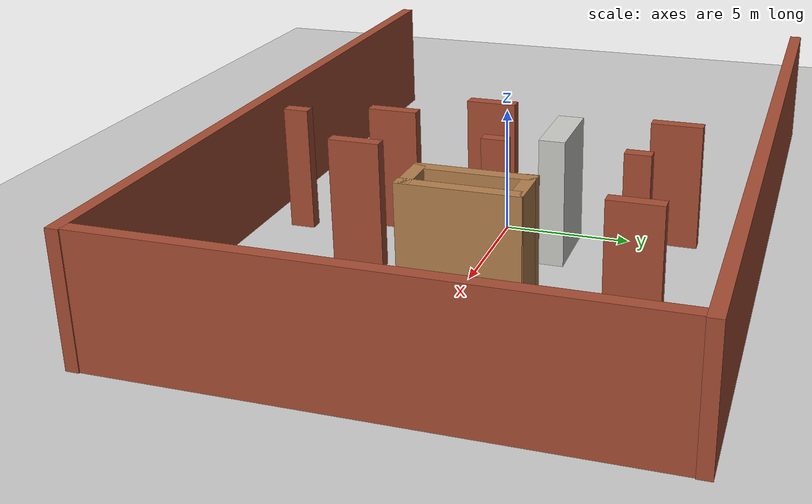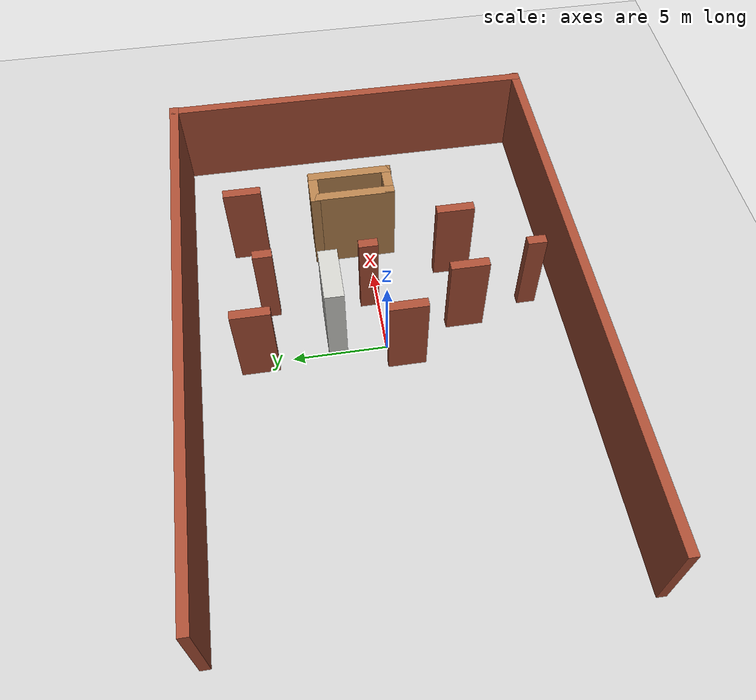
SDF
<sdf version="1.6">
 <world name="default">
  <model name="ground_plane">
   <static>1</static>
   <link name="link">
    <collision name="collision">
     <geometry><plane><normal>0 0 1</normal><size>40 40</size></plane></geometry>
     <surface><friction><ode><mu>100</mu><mu2>50</mu2></ode></friction></surface>
    </collision>
    <visual name="visual">
     <cast_shadows>0</cast_shadows>
     <geometry><plane><normal>0 0 1</normal><size>40 40</size></plane></geometry>
     <material>
      <script><uri>file://media/materials/scripts/gazebo.material</uri><name>Gazebo/Grey</name></script>
     </material>
    </visual>
   </link>
  </model>
  <model name="indoor6">
   <link name="Wall_1">
    <pose>-0.001616 10.1104 0 0 -0 0</pose>
    <inertial>
     <mass>1</mass>
     <inertia><ixx>1</ixx><ixy>0</ixy><ixz>0</ixz><iyy>1</iyy><iyz>0</iyz><izz>1</izz></inertia>
    </inertial>
    <visual name="Wall_1_Visual">
     <pose>0 0 2.5 0 -0 0</pose>
     <geometry><box><size>30 0.5 5</size></box></geometry>
     <material>
      <script><uri>file://media/materials/scripts/gazebo.material</uri><name>Gazebo/Bricks</name></script>
      <ambient>1 1 1 1</ambient>
      <shader type="pixel"><normal_map>__default__</normal_map></shader>
      <diffuse>1 1 1 1</diffuse>
      <specular>0.2 0.2 0.2 1</specular>
      <emissive>0 0 0 1</emissive>
     </material>
     <meta><layer>0</layer></meta>
    </visual>
    <collision name="Wall_1_Collision">
     <pose>0 0 2.5 0 -0 0</pose>
     <geometry><box><size>30 0.5 5</size></box></geometry>
     <surface>
      <friction>
       <ode><mu>1</mu><mu2>1</mu2><fdir1>0 0 0</fdir1><slip1>0</slip1><slip2>0</slip2></ode>
       <torsional>
        <coefficient>1</coefficient>
        <patch_radius>0</patch_radius>
        <surface_radius>0</surface_radius>
        <use_patch_radius>1</use_patch_radius>
        <ode><slip>0</slip></ode>
       </torsional>
      </friction>
      <bounce><restitution_coefficient>0</restitution_coefficient><threshold>1e+06</threshold></bounce>
      <contact>
       <collide_without_contact>0</collide_without_contact>
       <collide_without_contact_bitmask>1</collide_without_contact_bitmask>
       <collide_bitmask>1</collide_bitmask>
       <ode>
        <soft_cfm>0</soft_cfm>
        <soft_erp>0.2</soft_erp>
        <kp>1e+13</kp>
        <kd>1</kd>
        <max_vel>0.01</max_vel>
        <min_depth>0</min_depth>
       </ode>
       <bullet>
        <split_impulse>1</split_impulse>
        <split_impulse_penetration_threshold>-0.01</split_impulse_penetration_threshold>
        <soft_cfm>0</soft_cfm>
        <soft_erp>0.2</soft_erp>
        <kp>1e+13</kp>
        <kd>1</kd>
       </bullet>
      </contact>
     </surface>
    </collision>
   </link>
   <link name="Wall_19">
    <pose>6.71461 0.814272 0 0 0 -1.5708</pose>
    <visual name="Wall_19_Visual">
     <pose>0 0 2.5 0 -0 0</pose>
     <geometry><box><size>4.5 0.5 5</size></box></geometry>
     <material>
      <script><uri>file://media/materials/scripts/gazebo.material</uri><name>Gazebo/Wood</name></script>
      <ambient>1 1 1 1</ambient>
      <shader type="pixel"/>
     </material>
     <meta><layer>0</layer></meta>
    </visual>
    <collision name="Wall_19_Collision">
     <pose>0 0 2.5 0 -0 0</pose>
     <geometry><box><size>4.5 0.5 5</size></box></geometry>
     <surface>
      <friction>
       <ode><mu>1</mu><mu2>1</mu2><fdir1>0 0 0</fdir1><slip1>0</slip1><slip2>0</slip2></ode>
       <torsional>
        <coefficient>1</coefficient>
        <patch_radius>0</patch_radius>
        <surface_radius>0</surface_radius>
        <use_patch_radius>1</use_patch_radius>
        <ode><slip>0</slip></ode>
       </torsional>
      </friction>
      <bounce><restitution_coefficient>0</restitution_coefficient><threshold>1e+06</threshold></bounce>
      <contact>
       <collide_without_contact>0</collide_without_contact>
       <collide_without_contact_bitmask>1</collide_without_contact_bitmask>
       <collide_bitmask>1</collide_bitmask>
       <ode>
        <soft_cfm>0</soft_cfm>
        <soft_erp>0.2</soft_erp>
        <kp>1e+13</kp>
        <kd>1</kd>
        <max_vel>0.01</max_vel>
        <min_depth>0</min_depth>
       </ode>
       <bullet>
        <split_impulse>1</split_impulse>
        <split_impulse_penetration_threshold>-0.01</split_impulse_penetration_threshold>
        <soft_cfm>0</soft_cfm>
        <soft_erp>0.2</soft_erp>
        <kp>1e+13</kp>
        <kd>1</kd>
       </bullet>
      </contact>
     </surface>
    </collision>
   </link>
   <link name="Wall_2">
    <pose>14.7041 0.008258 0 0 0 -1.5708</pose>
    <visual name="Wall_2_Visual">
     <pose>0 0 2.5 0 -0 0</pose>
     <geometry><box><size>20.5 0.5 5</size></box></geometry>
     <material>
      <script><uri>file://media/materials/scripts/gazebo.material</uri><name>Gazebo/Bricks</name></script>
      <ambient>1 1 1 1</ambient>
      <shader type="pixel"/>
     </material>
     <meta><layer>0</layer></meta>
    </visual>
    <collision name="Wall_2_Collision">
     <pose>0 0 2.5 0 -0 0</pose>
     <geometry><box><size>20.5 0.5 5</size></box></geometry>
     <surface>
      <friction>
       <ode><mu>1</mu><mu2>1</mu2><fdir1>0 0 0</fdir1><slip1>0</slip1><slip2>0</slip2></ode>
       <torsional>
        <coefficient>1</coefficient>
        <patch_radius>0</patch_radius>
        <surface_radius>0</surface_radius>
        <use_patch_radius>1</use_patch_radius>
        <ode><slip>0</slip></ode>
       </torsional>
      </friction>
      <bounce><restitution_coefficient>0</restitution_coefficient><threshold>1e+06</threshold></bounce>
      <contact>
       <collide_without_contact>0</collide_without_contact>
       <collide_without_contact_bitmask>1</collide_without_contact_bitmask>
       <collide_bitmask>1</collide_bitmask>
       <ode>
        <soft_cfm>0</soft_cfm>
        <soft_erp>0.2</soft_erp>
        <kp>1e+13</kp>
        <kd>1</kd>
        <max_vel>0.01</max_vel>
        <min_depth>0</min_depth>
       </ode>
       <bullet>
        <split_impulse>1</split_impulse>
        <split_impulse_penetration_threshold>-0.01</split_impulse_penetration_threshold>
        <soft_cfm>0</soft_cfm>
        <soft_erp>0.2</soft_erp>
        <kp>1e+13</kp>
        <kd>1</kd>
       </bullet>
      </contact>
     </surface>
    </collision>
   </link>
   <link name="Wall_20">
    <pose>7.49531 -1.17619 0 0 -0 0</pose>
    <inertial>
     <mass>1</mass>
     <inertia><ixx>1</ixx><ixy>0</ixy><ixz>0</ixz><iyy>1</iyy><iyz>0</iyz><izz>1</izz></inertia>
    </inertial>
    <visual name="Wall_20_Visual">
     <pose>0 0 2.5 0 -0 0</pose>
     <geometry><box><size>2 0.5 5</size></box></geometry>
     <material>
      <script><uri>file://media/materials/scripts/gazebo.material</uri><name>Gazebo/Wood</name></script>
      <ambient>1 1 1 1</ambient>
      <shader type="pixel"><normal_map>__default__</normal_map></shader>
      <diffuse>1 1 1 1</diffuse>
      <specular>0.2 0.2 0.2 1</specular>
      <emissive>0 0 0 1</emissive>
     </material>
     <meta><layer>0</layer></meta>
    </visual>
    <collision name="Wall_20_Collision">
     <pose>0 0 2.5 0 -0 0</pose>
     <geometry><box><size>2 0.5 5</size></box></geometry>
     <surface>
      <friction>
       <ode><mu>1</mu><mu2>1</mu2><fdir1>0 0 0</fdir1><slip1>0</slip1><slip2>0</slip2></ode>
       <torsional>
        <coefficient>1</coefficient>
        <patch_radius>0</patch_radius>
        <surface_radius>0</surface_radius>
        <use_patch_radius>1</use_patch_radius>
        <ode><slip>0</slip></ode>
       </torsional>
      </friction>
      <bounce><restitution_coefficient>0</restitution_coefficient><threshold>1e+06</threshold></bounce>
      <contact>
       <collide_without_contact>0</collide_without_contact>
       <collide_without_contact_bitmask>1</collide_without_contact_bitmask>
       <collide_bitmask>1</collide_bitmask>
       <ode>
        <soft_cfm>0</soft_cfm>
        <soft_erp>0.2</soft_erp>
        <kp>1e+13</kp>
        <kd>1</kd>
        <max_vel>0.01</max_vel>
        <min_depth>0</min_depth>
       </ode>
       <bullet>
        <split_impulse>1</split_impulse>
        <split_impulse_penetration_threshold>-0.01</split_impulse_penetration_threshold>
        <soft_cfm>0</soft_cfm>
        <soft_erp>0.2</soft_erp>
        <kp>1e+13</kp>
        <kd>1</kd>
       </bullet>
      </contact>
     </surface>
    </collision>
   </link>
   <link name="Wall_21">
    <pose>8.24649 0.78306 0 0 -0 1.5708</pose>
    <visual name="Wall_21_Visual">
     <pose>0 0 2.5 0 -0 0</pose>
     <geometry><box><size>4.5 0.5 5</size></box></geometry>
     <material>
      <script><uri>file://media/materials/scripts/gazebo.material</uri><name>Gazebo/Wood</name></script>
      <ambient>1 1 1 1</ambient>
      <shader type="pixel"/>
     </material>
     <meta><layer>0</layer></meta>
    </visual>
    <collision name="Wall_21_Collision">
     <pose>0 0 2.5 0 -0 0</pose>
     <geometry><box><size>4.5 0.5 5</size></box></geometry>
     <surface>
      <friction>
       <ode><mu>1</mu><mu2>1</mu2><fdir1>0 0 0</fdir1><slip1>0</slip1><slip2>0</slip2></ode>
       <torsional>
        <coefficient>1</coefficient>
        <patch_radius>0</patch_radius>
        <surface_radius>0</surface_radius>
        <use_patch_radius>1</use_patch_radius>
        <ode><slip>0</slip></ode>
       </torsional>
      </friction>
      <bounce><restitution_coefficient>0</restitution_coefficient><threshold>1e+06</threshold></bounce>
      <contact>
       <collide_without_contact>0</collide_without_contact>
       <collide_without_contact_bitmask>1</collide_without_contact_bitmask>
       <collide_bitmask>1</collide_bitmask>
       <ode>
        <soft_cfm>0</soft_cfm>
        <soft_erp>0.2</soft_erp>
        <kp>1e+13</kp>
        <kd>1</kd>
        <max_vel>0.01</max_vel>
        <min_depth>0</min_depth>
       </ode>
       <bullet>
        <split_impulse>1</split_impulse>
        <split_impulse_penetration_threshold>-0.01</split_impulse_penetration_threshold>
        <soft_cfm>0</soft_cfm>
        <soft_erp>0.2</soft_erp>
        <kp>1e+13</kp>
        <kd>1</kd>
       </bullet>
      </contact>
     </surface>
    </collision>
   </link>
   <link name="Wall_24">
    <pose>7.43228 2.80863 0 0 -0 0</pose>
    <inertial>
     <mass>1</mass>
     <inertia><ixx>1</ixx><ixy>0</ixy><ixz>0</ixz><iyy>1</iyy><iyz>0</iyz><izz>1</izz></inertia>
    </inertial>
    <visual name="Wall_24_Visual">
     <pose>0 0 2.5 0 -0 0</pose>
     <geometry><box><size>2 0.5 5</size></box></geometry>
     <material>
      <script><uri>file://media/materials/scripts/gazebo.material</uri><name>Gazebo/Wood</name></script>
      <ambient>1 1 1 1</ambient>
      <shader type="pixel"><normal_map>__default__</normal_map></shader>
      <diffuse>1 1 1 1</diffuse>
      <specular>0.2 0.2 0.2 1</specular>
      <emissive>0 0 0 1</emissive>
     </material>
     <meta><layer>0</layer></meta>
    </visual>
    <collision name="Wall_24_Collision">
     <pose>0 0 2.5 0 -0 0</pose>
     <geometry><box><size>2 0.5 5</size></box></geometry>
     <surface>
      <friction>
       <ode><mu>1</mu><mu2>1</mu2><fdir1>0 0 0</fdir1><slip1>0</slip1><slip2>0</slip2></ode>
       <torsional>
        <coefficient>1</coefficient>
        <patch_radius>0</patch_radius>
        <surface_radius>0</surface_radius>
        <use_patch_radius>1</use_patch_radius>
        <ode><slip>0</slip></ode>
       </torsional>
      </friction>
      <bounce><restitution_coefficient>0</restitution_coefficient><threshold>1e+06</threshold></bounce>
      <contact>
       <collide_without_contact>0</collide_without_contact>
       <collide_without_contact_bitmask>1</collide_without_contact_bitmask>
       <collide_bitmask>1</collide_bitmask>
       <ode>
        <soft_cfm>0</soft_cfm>
        <soft_erp>0.2</soft_erp>
        <kp>1e+13</kp>
        <kd>1</kd>
        <max_vel>0.01</max_vel>
        <min_depth>0</min_depth>
       </ode>
       <bullet>
        <split_impulse>1</split_impulse>
        <split_impulse_penetration_threshold>-0.01</split_impulse_penetration_threshold>
        <soft_cfm>0</soft_cfm>
        <soft_erp>0.2</soft_erp>
        <kp>1e+13</kp>
        <kd>1</kd>
       </bullet>
      </contact>
     </surface>
    </collision>
   </link>
   <link name="Wall_26">
    <pose>1.50196 2.59156 0 0 0 -1.5708</pose>
    <inertial>
     <mass>1</mass>
     <inertia><ixx>1</ixx><ixy>0</ixy><ixz>0</ixz><iyy>1</iyy><iyz>0</iyz><izz>1</izz></inertia>
    </inertial>
    <visual name="Wall_26_Visual">
     <pose>0 0 2.5 0 -0 0</pose>
     <geometry><box><size>1 3 5</size></box></geometry>
     <material>
      <script><uri>file://media/materials/scripts/gazebo.material</uri><name>Gazebo/CeilingTiled</name></script>
      <ambient>1 1 1 1</ambient>
      <shader type="pixel"><normal_map>__default__</normal_map></shader>
      <diffuse>1 1 1 1</diffuse>
      <specular>0 0 0 1</specular>
      <emissive>0 0 0 1</emissive>
     </material>
     <meta><layer>0</layer></meta>
    </visual>
    <collision name="Wall_26_Collision">
     <pose>0 0 2.5 0 -0 0</pose>
     <geometry><box><size>1 3 5</size></box></geometry>
     <surface>
      <friction>
       <ode><mu>1</mu><mu2>1</mu2><fdir1>0 0 0</fdir1><slip1>0</slip1><slip2>0</slip2></ode>
       <torsional>
        <coefficient>1</coefficient>
        <patch_radius>0</patch_radius>
        <surface_radius>0</surface_radius>
        <use_patch_radius>1</use_patch_radius>
        <ode><slip>0</slip></ode>
       </torsional>
      </friction>
      <bounce><restitution_coefficient>0</restitution_coefficient><threshold>1e+06</threshold></bounce>
      <contact>
       <collide_without_contact>0</collide_without_contact>
       <collide_without_contact_bitmask>1</collide_without_contact_bitmask>
       <collide_bitmask>1</collide_bitmask>
       <ode>
        <soft_cfm>0</soft_cfm>
        <soft_erp>0.2</soft_erp>
        <kp>1e+13</kp>
        <kd>1</kd>
        <max_vel>0.01</max_vel>
        <min_depth>0</min_depth>
       </ode>
       <bullet>
        <split_impulse>1</split_impulse>
        <split_impulse_penetration_threshold>-0.01</split_impulse_penetration_threshold>
        <soft_cfm>0</soft_cfm>
        <soft_erp>0.2</soft_erp>
        <kp>1e+13</kp>
        <kd>1</kd>
       </bullet>
      </contact>
     </surface>
    </collision>
   </link>
   <link name="Wall_3">
    <pose>0 -10 0 0 -0 3.14159</pose>
    <inertial>
     <mass>1</mass>
     <inertia><ixx>1</ixx><ixy>0</ixy><ixz>0</ixz><iyy>1</iyy><iyz>0</iyz><izz>1</izz></inertia>
    </inertial>
    <visual name="Wall_3_Visual">
     <pose>0 0 2.5 0 -0 0</pose>
     <geometry><box><size>30 0.5 5</size></box></geometry>
     <material>
      <script><uri>file://media/materials/scripts/gazebo.material</uri><name>Gazebo/Bricks</name></script>
      <ambient>1 1 1 1</ambient>
      <shader type="pixel"><normal_map>__default__</normal_map></shader>
      <diffuse>1 1 1 1</diffuse>
      <specular>0.2 0.2 0.2 1</specular>
      <emissive>0 0 0 1</emissive>
     </material>
     <meta><layer>0</layer></meta>
    </visual>
    <collision name="Wall_3_Collision">
     <pose>0 0 2.5 0 -0 0</pose>
     <geometry><box><size>30 0.5 5</size></box></geometry>
     <surface>
      <friction>
       <ode><mu>1</mu><mu2>1</mu2><fdir1>0 0 0</fdir1><slip1>0</slip1><slip2>0</slip2></ode>
       <torsional>
        <coefficient>1</coefficient>
        <patch_radius>0</patch_radius>
        <surface_radius>0</surface_radius>
        <use_patch_radius>1</use_patch_radius>
        <ode><slip>0</slip></ode>
       </torsional>
      </friction>
      <bounce><restitution_coefficient>0</restitution_coefficient><threshold>1e+06</threshold></bounce>
      <contact>
       <collide_without_contact>0</collide_without_contact>
       <collide_without_contact_bitmask>1</collide_without_contact_bitmask>
       <collide_bitmask>1</collide_bitmask>
       <ode>
        <soft_cfm>0</soft_cfm>
        <soft_erp>0.2</soft_erp>
        <kp>1e+13</kp>
        <kd>1</kd>
        <max_vel>0.01</max_vel>
        <min_depth>0</min_depth>
       </ode>
       <bullet>
        <split_impulse>1</split_impulse>
        <split_impulse_penetration_threshold>-0.01</split_impulse_penetration_threshold>
        <soft_cfm>0</soft_cfm>
        <soft_erp>0.2</soft_erp>
        <kp>1e+13</kp>
        <kd>1</kd>
       </bullet>
      </contact>
     </surface>
    </collision>
   </link>
   <link name="Wall_7_clone">
    <pose>-0.30762 6.71115 0 0 -0 1.5708</pose>
    <inertial>
     <mass>1</mass>
     <inertia><ixx>1</ixx><ixy>0</ixy><ixz>0</ixz><iyy>1</iyy><iyz>0</iyz><izz>1</izz></inertia>
    </inertial>
    <visual name="Wall_7_Visual">
     <pose>0 0 2.5 0 -0 0</pose>
     <geometry><box><size>2 0.5 5</size></box></geometry>
     <material>
      <script><uri>file://media/materials/scripts/gazebo.material</uri><name>Gazebo/Bricks</name></script>
      <ambient>1 1 1 1</ambient>
      <shader type="pixel"><normal_map>__default__</normal_map></shader>
      <diffuse>1 1 1 1</diffuse>
      <specular>0.2 0.2 0.2 1</specular>
      <emissive>0 0 0 1</emissive>
     </material>
     <meta><layer>0</layer></meta>
    </visual>
    <collision name="Wall_7_Collision">
     <pose>0 0 2.5 0 -0 0</pose>
     <geometry><box><size>2 0.5 5</size></box></geometry>
     <surface>
      <friction>
       <ode><mu>1</mu><mu2>1</mu2><fdir1>0 0 0</fdir1><slip1>0</slip1><slip2>0</slip2></ode>
       <torsional>
        <coefficient>1</coefficient>
        <patch_radius>0</patch_radius>
        <surface_radius>0</surface_radius>
        <use_patch_radius>1</use_patch_radius>
        <ode><slip>0</slip></ode>
       </torsional>
      </friction>
      <bounce><restitution_coefficient>0</restitution_coefficient><threshold>1e+06</threshold></bounce>
      <contact>
       <collide_without_contact>0</collide_without_contact>
       <collide_without_contact_bitmask>1</collide_without_contact_bitmask>
       <collide_bitmask>1</collide_bitmask>
       <ode>
        <soft_cfm>0</soft_cfm>
        <soft_erp>0.2</soft_erp>
        <kp>1e+13</kp>
        <kd>1</kd>
        <max_vel>0.01</max_vel>
        <min_depth>0</min_depth>
       </ode>
       <bullet>
        <split_impulse>1</split_impulse>
        <split_impulse_penetration_threshold>-0.01</split_impulse_penetration_threshold>
        <soft_cfm>0</soft_cfm>
        <soft_erp>0.2</soft_erp>
        <kp>1e+13</kp>
        <kd>1</kd>
       </bullet>
      </contact>
     </surface>
    </collision>
   </link>
   <link name="Wall_7_clone_0">
    <pose>-0.972126 -0.90685 0 0 -0 1.5708</pose>
    <inertial>
     <mass>1</mass>
     <inertia><ixx>1</ixx><ixy>0</ixy><ixz>0</ixz><iyy>1</iyy><iyz>0</iyz><izz>1</izz></inertia>
    </inertial>
    <visual name="Wall_7_Visual">
     <pose>0 0 2.5 0 -0 0</pose>
     <geometry><box><size>2 0.5 5</size></box></geometry>
     <material>
      <script><uri>file://media/materials/scripts/gazebo.material</uri><name>Gazebo/Bricks</name></script>
      <ambient>1 1 1 1</ambient>
      <shader type="pixel"><normal_map>__default__</normal_map></shader>
      <diffuse>1 1 1 1</diffuse>
      <specular>0.2 0.2 0.2 1</specular>
      <emissive>0 0 0 1</emissive>
     </material>
     <meta><layer>0</layer></meta>
    </visual>
    <collision name="Wall_7_Collision">
     <pose>0 0 2.5 0 -0 0</pose>
     <geometry><box><size>2 0.5 5</size></box></geometry>
     <surface>
      <friction>
       <ode><mu>1</mu><mu2>1</mu2><fdir1>0 0 0</fdir1><slip1>0</slip1><slip2>0</slip2></ode>
       <torsional>
        <coefficient>1</coefficient>
        <patch_radius>0</patch_radius>
        <surface_radius>0</surface_radius>
        <use_patch_radius>1</use_patch_radius>
        <ode><slip>0</slip></ode>
       </torsional>
      </friction>
      <bounce><restitution_coefficient>0</restitution_coefficient><threshold>1e+06</threshold></bounce>
      <contact>
       <collide_without_contact>0</collide_without_contact>
       <collide_without_contact_bitmask>1</collide_without_contact_bitmask>
       <collide_bitmask>1</collide_bitmask>
       <ode>
        <soft_cfm>0</soft_cfm>
        <soft_erp>0.2</soft_erp>
        <kp>1e+13</kp>
        <kd>1</kd>
        <max_vel>0.01</max_vel>
        <min_depth>0</min_depth>
       </ode>
       <bullet>
        <split_impulse>1</split_impulse>
        <split_impulse_penetration_threshold>-0.01</split_impulse_penetration_threshold>
        <soft_cfm>0</soft_cfm>
        <soft_erp>0.2</soft_erp>
        <kp>1e+13</kp>
        <kd>1</kd>
       </bullet>
      </contact>
     </surface>
    </collision>
   </link>
   <link name="Wall_7_clone_0_clone">
    <pose>4.8754 -4.38635 0 0 -0 1.5708</pose>
    <inertial>
     <mass>1</mass>
     <inertia><ixx>1</ixx><ixy>0</ixy><ixz>0</ixz><iyy>1</iyy><iyz>0</iyz><izz>1</izz></inertia>
    </inertial>
    <visual name="Wall_7_Visual">
     <pose>0 0 2.5 0 -0 0</pose>
     <geometry><box><size>2 0.5 5</size></box></geometry>
     <material>
      <script><uri>file://media/materials/scripts/gazebo.material</uri><name>Gazebo/Bricks</name></script>
      <ambient>1 1 1 1</ambient>
      <shader type="pixel"><normal_map>__default__</normal_map></shader>
      <diffuse>1 1 1 1</diffuse>
      <specular>0.2 0.2 0.2 1</specular>
      <emissive>0 0 0 1</emissive>
     </material>
     <meta><layer>0</layer></meta>
    </visual>
    <collision name="Wall_7_Collision">
     <pose>0 0 2.5 0 -0 0</pose>
     <geometry><box><size>2 0.5 5</size></box></geometry>
     <surface>
      <friction>
       <ode><mu>1</mu><mu2>1</mu2><fdir1>0 0 0</fdir1><slip1>0</slip1><slip2>0</slip2></ode>
       <torsional>
        <coefficient>1</coefficient>
        <patch_radius>0</patch_radius>
        <surface_radius>0</surface_radius>
        <use_patch_radius>1</use_patch_radius>
        <ode><slip>0</slip></ode>
       </torsional>
      </friction>
      <bounce><restitution_coefficient>0</restitution_coefficient><threshold>1e+06</threshold></bounce>
      <contact>
       <collide_without_contact>0</collide_without_contact>
       <collide_without_contact_bitmask>1</collide_without_contact_bitmask>
       <collide_bitmask>1</collide_bitmask>
       <ode>
        <soft_cfm>0</soft_cfm>
        <soft_erp>0.2</soft_erp>
        <kp>1e+13</kp>
        <kd>1</kd>
        <max_vel>0.01</max_vel>
        <min_depth>0</min_depth>
       </ode>
       <bullet>
        <split_impulse>1</split_impulse>
        <split_impulse_penetration_threshold>-0.01</split_impulse_penetration_threshold>
        <soft_cfm>0</soft_cfm>
        <soft_erp>0.2</soft_erp>
        <kp>1e+13</kp>
        <kd>1</kd>
       </bullet>
      </contact>
     </surface>
    </collision>
   </link>
   <link name="Wall_7_clone_0_clone_0">
    <pose>1.05848 -4.36916 0 0 -0 1.5708</pose>
    <inertial>
     <mass>1</mass>
     <inertia><ixx>1</ixx><ixy>0</ixy><ixz>0</ixz><iyy>1</iyy><iyz>0</iyz><izz>1</izz></inertia>
    </inertial>
    <visual name="Wall_7_Visual">
     <pose>0 0 2.5 0 -0 0</pose>
     <geometry><box><size>2 0.5 5</size></box></geometry>
     <material>
      <script><uri>file://media/materials/scripts/gazebo.material</uri><name>Gazebo/Bricks</name></script>
      <ambient>1 1 1 1</ambient>
      <shader type="pixel"><normal_map>__default__</normal_map></shader>
      <diffuse>1 1 1 1</diffuse>
      <specular>0.2 0.2 0.2 1</specular>
      <emissive>0 0 0 1</emissive>
     </material>
     <meta><layer>0</layer></meta>
    </visual>
    <collision name="Wall_7_Collision">
     <pose>0 0 2.5 0 -0 0</pose>
     <geometry><box><size>2 0.5 5</size></box></geometry>
     <surface>
      <friction>
       <ode><mu>1</mu><mu2>1</mu2><fdir1>0 0 0</fdir1><slip1>0</slip1><slip2>0</slip2></ode>
       <torsional>
        <coefficient>1</coefficient>
        <patch_radius>0</patch_radius>
        <surface_radius>0</surface_radius>
        <use_patch_radius>1</use_patch_radius>
        <ode><slip>0</slip></ode>
       </torsional>
      </friction>
      <bounce><restitution_coefficient>0</restitution_coefficient><threshold>1e+06</threshold></bounce>
      <contact>
       <collide_without_contact>0</collide_without_contact>
       <collide_without_contact_bitmask>1</collide_without_contact_bitmask>
       <collide_bitmask>1</collide_bitmask>
       <ode>
        <soft_cfm>0</soft_cfm>
        <soft_erp>0.2</soft_erp>
        <kp>1e+13</kp>
        <kd>1</kd>
        <max_vel>0.01</max_vel>
        <min_depth>0</min_depth>
       </ode>
       <bullet>
        <split_impulse>1</split_impulse>
        <split_impulse_penetration_threshold>-0.01</split_impulse_penetration_threshold>
        <soft_cfm>0</soft_cfm>
        <soft_erp>0.2</soft_erp>
        <kp>1e+13</kp>
        <kd>1</kd>
       </bullet>
      </contact>
     </surface>
    </collision>
   </link>
   <link name="Wall_7_clone_clone">
    <pose>7.68765 6.64114 0 0 -0 1.5708</pose>
    <inertial>
     <mass>1</mass>
     <inertia><ixx>1</ixx><ixy>0</ixy><ixz>0</ixz><iyy>1</iyy><iyz>0</iyz><izz>1</izz></inertia>
    </inertial>
    <visual name="Wall_7_Visual">
     <pose>0 0 2.5 0 -0 0</pose>
     <geometry><box><size>2 0.5 5</size></box></geometry>
     <material>
      <script><uri>file://media/materials/scripts/gazebo.material</uri><name>Gazebo/Bricks</name></script>
      <ambient>1 1 1 1</ambient>
      <shader type="pixel"><normal_map>__default__</normal_map></shader>
      <diffuse>1 1 1 1</diffuse>
      <specular>0.2 0.2 0.2 1</specular>
      <emissive>0 0 0 1</emissive>
     </material>
     <meta><layer>0</layer></meta>
    </visual>
    <collision name="Wall_7_Collision">
     <pose>0 0 2.5 0 -0 0</pose>
     <geometry><box><size>2 0.5 5</size></box></geometry>
     <surface>
      <friction>
       <ode><mu>1</mu><mu2>1</mu2><fdir1>0 0 0</fdir1><slip1>0</slip1><slip2>0</slip2></ode>
       <torsional>
        <coefficient>1</coefficient>
        <patch_radius>0</patch_radius>
        <surface_radius>0</surface_radius>
        <use_patch_radius>1</use_patch_radius>
        <ode><slip>0</slip></ode>
       </torsional>
      </friction>
      <bounce><restitution_coefficient>0</restitution_coefficient><threshold>1e+06</threshold></bounce>
      <contact>
       <collide_without_contact>0</collide_without_contact>
       <collide_without_contact_bitmask>1</collide_without_contact_bitmask>
       <collide_bitmask>1</collide_bitmask>
       <ode>
        <soft_cfm>0</soft_cfm>
        <soft_erp>0.2</soft_erp>
        <kp>1e+13</kp>
        <kd>1</kd>
        <max_vel>0.01</max_vel>
        <min_depth>0</min_depth>
       </ode>
       <bullet>
        <split_impulse>1</split_impulse>
        <split_impulse_penetration_threshold>-0.01</split_impulse_penetration_threshold>
        <soft_cfm>0</soft_cfm>
        <soft_erp>0.2</soft_erp>
        <kp>1e+13</kp>
        <kd>1</kd>
       </bullet>
      </contact>
     </surface>
    </collision>
   </link>
   <link name="Wall_9_clone_0">
    <pose>3.26237 5.87916 0 0 -0 1.5708</pose>
    <inertial>
     <mass>1</mass>
     <inertia><ixx>1</ixx><ixy>0</ixy><ixz>0</ixz><iyy>1</iyy><iyz>0</iyz><izz>1</izz></inertia>
    </inertial>
    <visual name="Wall_9_Visual">
     <pose>0 0 2.5 0 -0 0</pose>
     <geometry><box><size>1 0.5 5</size></box></geometry>
     <material>
      <script><uri>file://media/materials/scripts/gazebo.material</uri><name>Gazebo/Bricks</name></script>
      <ambient>1 1 1 1</ambient>
      <shader type="pixel"><normal_map>__default__</normal_map></shader>
      <diffuse>1 1 1 1</diffuse>
      <specular>0.2 0.2 0.2 1</specular>
      <emissive>0 0 0 1</emissive>
     </material>
     <meta><layer>0</layer></meta>
    </visual>
    <collision name="Wall_9_Collision">
     <pose>0 0 2.5 0 -0 0</pose>
     <geometry><box><size>1 0.5 5</size></box></geometry>
     <surface>
      <friction>
       <ode><mu>1</mu><mu2>1</mu2><fdir1>0 0 0</fdir1><slip1>0</slip1><slip2>0</slip2></ode>
       <torsional>
        <coefficient>1</coefficient>
        <patch_radius>0</patch_radius>
        <surface_radius>0</surface_radius>
        <use_patch_radius>1</use_patch_radius>
        <ode><slip>0</slip></ode>
       </torsional>
      </friction>
      <bounce><restitution_coefficient>0</restitution_coefficient><threshold>1e+06</threshold></bounce>
      <contact>
       <collide_without_contact>0</collide_without_contact>
       <collide_without_contact_bitmask>1</collide_without_contact_bitmask>
       <collide_bitmask>1</collide_bitmask>
       <ode>
        <soft_cfm>0</soft_cfm>
        <soft_erp>0.2</soft_erp>
        <kp>1e+13</kp>
        <kd>1</kd>
        <max_vel>0.01</max_vel>
        <min_depth>0</min_depth>
       </ode>
       <bullet>
        <split_impulse>1</split_impulse>
        <split_impulse_penetration_threshold>-0.01</split_impulse_penetration_threshold>
        <soft_cfm>0</soft_cfm>
        <soft_erp>0.2</soft_erp>
        <kp>1e+13</kp>
        <kd>1</kd>
       </bullet>
      </contact>
     </surface>
    </collision>
   </link>
   <link name="Wall_9_clone_0_clone">
    <pose>2.07596 -8.05209 0 0 -0 1.5708</pose>
    <inertial>
     <mass>1</mass>
     <inertia><ixx>1</ixx><ixy>0</ixy><ixz>0</ixz><iyy>1</iyy><iyz>0</iyz><izz>1</izz></inertia>
    </inertial>
    <visual name="Wall_9_Visual">
     <pose>0 0 2.5 0 -0 0</pose>
     <geometry><box><size>1 0.5 5</size></box></geometry>
     <material>
      <script><uri>file://media/materials/scripts/gazebo.material</uri><name>Gazebo/Bricks</name></script>
      <ambient>1 1 1 1</ambient>
      <shader type="pixel"><normal_map>__default__</normal_map></shader>
      <diffuse>1 1 1 1</diffuse>
      <specular>0.2 0.2 0.2 1</specular>
      <emissive>0 0 0 1</emissive>
     </material>
     <meta><layer>0</layer></meta>
    </visual>
    <collision name="Wall_9_Collision">
     <pose>0 0 2.5 0 -0 0</pose>
     <geometry><box><size>1 0.5 5</size></box></geometry>
     <surface>
      <friction>
       <ode><mu>1</mu><mu2>1</mu2><fdir1>0 0 0</fdir1><slip1>0</slip1><slip2>0</slip2></ode>
       <torsional>
        <coefficient>1</coefficient>
        <patch_radius>0</patch_radius>
        <surface_radius>0</surface_radius>
        <use_patch_radius>1</use_patch_radius>
        <ode><slip>0</slip></ode>
       </torsional>
      </friction>
      <bounce><restitution_coefficient>0</restitution_coefficient><threshold>1e+06</threshold></bounce>
      <contact>
       <collide_without_contact>0</collide_without_contact>
       <collide_without_contact_bitmask>1</collide_without_contact_bitmask>
       <collide_bitmask>1</collide_bitmask>
       <ode>
        <soft_cfm>0</soft_cfm>
        <soft_erp>0.2</soft_erp>
        <kp>1e+13</kp>
        <kd>1</kd>
        <max_vel>0.01</max_vel>
        <min_depth>0</min_depth>
       </ode>
       <bullet>
        <split_impulse>1</split_impulse>
        <split_impulse_penetration_threshold>-0.01</split_impulse_penetration_threshold>
        <soft_cfm>0</soft_cfm>
        <soft_erp>0.2</soft_erp>
        <kp>1e+13</kp>
        <kd>1</kd>
       </bullet>
      </contact>
     </surface>
    </collision>
   </link>
   <link name="Wall_9_clone_0_clone_clone">
    <pose>3.16627 0.489565 0 0 -0 1.5708</pose>
    <inertial>
     <mass>1</mass>
     <inertia><ixx>1</ixx><ixy>0</ixy><ixz>0</ixz><iyy>1</iyy><iyz>0</iyz><izz>1</izz></inertia>
    </inertial>
    <visual name="Wall_9_Visual">
     <pose>0 0 2.5 0 -0 0</pose>
     <geometry><box><size>1 0.5 5</size></box></geometry>
     <material>
      <script><uri>file://media/materials/scripts/gazebo.material</uri><name>Gazebo/Bricks</name></script>
      <ambient>1 1 1 1</ambient>
      <shader type="pixel"><normal_map>__default__</normal_map></shader>
      <diffuse>1 1 1 1</diffuse>
      <specular>0.2 0.2 0.2 1</specular>
      <emissive>0 0 0 1</emissive>
     </material>
     <meta><layer>0</layer></meta>
    </visual>
    <collision name="Wall_9_Collision">
     <pose>0 0 2.5 0 -0 0</pose>
     <geometry><box><size>1 0.5 5</size></box></geometry>
     <surface>
      <friction>
       <ode><mu>1</mu><mu2>1</mu2><fdir1>0 0 0</fdir1><slip1>0</slip1><slip2>0</slip2></ode>
       <torsional>
        <coefficient>1</coefficient>
        <patch_radius>0</patch_radius>
        <surface_radius>0</surface_radius>
        <use_patch_radius>1</use_patch_radius>
        <ode><slip>0</slip></ode>
       </torsional>
      </friction>
      <bounce><restitution_coefficient>0</restitution_coefficient><threshold>1e+06</threshold></bounce>
      <contact>
       <collide_without_contact>0</collide_without_contact>
       <collide_without_contact_bitmask>1</collide_without_contact_bitmask>
       <collide_bitmask>1</collide_bitmask>
       <ode>
        <soft_cfm>0</soft_cfm>
        <soft_erp>0.2</soft_erp>
        <kp>1e+13</kp>
        <kd>1</kd>
        <max_vel>0.01</max_vel>
        <min_depth>0</min_depth>
       </ode>
       <bullet>
        <split_impulse>1</split_impulse>
        <split_impulse_penetration_threshold>-0.01</split_impulse_penetration_threshold>
        <soft_cfm>0</soft_cfm>
        <soft_erp>0.2</soft_erp>
        <kp>1e+13</kp>
        <kd>1</kd>
       </bullet>
      </contact>
     </surface>
    </collision>
   </link>
   <static>1</static>
  </model>
 </world>
</sdf>
